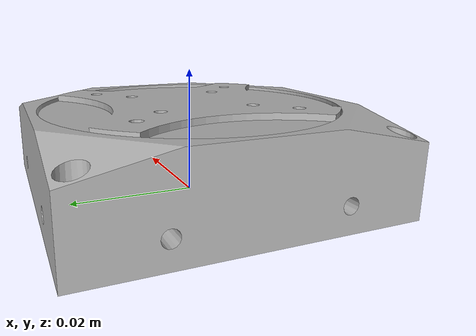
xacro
<?xml version="1.0"?>
<robot xmlns:xacro="http://www.ros.org/wiki/xacro" name="iiwa">

    <xacro:arg name="hardware_interface" default="PositionJointInterface"/>
    <xacro:property name="type" value="rot"/>
    <xacro:arg name="prefix" default="x"/>

    <link name="base_link"/>

    <xacro:include filename="$(find micro_resector_description)/urdf/materials.xacro" />
    <xacro:include filename="$(find micro_resector_description)/urdf/stage/linear_stage.xacro"/>
    <xacro:include filename="$(find micro_resector_description)/urdf/stage/rotation_stage.xacro"/>

    <joint name="$(arg prefix)_${type}_stage_world_joint" type="fixed">
        <parent link="base_link"/>
        <child link="$(arg prefix)_${type}_base_link"/>
        <origin xyz="0.0 0.0 0.00" rpy="${pi/2} 0.0 0.0"/>
    </joint>

    <xacro:if value="${type == 'lin'}">
        <xacro:linear_stage hardware_interface="$(arg hardware_interface)" prefix="$(arg prefix)">
        </xacro:linear_stage>
    </xacro:if>

    <xacro:if value="${type == 'rot'}">
        <xacro:rotation_stage hardware_interface="$(arg hardware_interface)" prefix="$(arg prefix)">
        </xacro:rotation_stage>
    </xacro:if>

</robot>

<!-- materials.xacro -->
<robot name="stage" xmlns:xacro="http://www.ros.org/wiki/xacro" >

<material name="silver">
  <color rgba="0.700 0.700 0.700 1.000"/>
</material>

</robot>

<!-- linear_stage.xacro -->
<robot name="linear_stage" xmlns:xacro="http://www.ros.org/wiki/xacro">

<xacro:include filename="$(find micro_resector_description)/urdf/stage/stage.trans" />
<xacro:include filename="$(find micro_resector_description)/urdf/stage/stage.gazebo" />

<xacro:macro name="linear_stage" params="prefix hardware_interface">
  <link name="${prefix}_lin_base_link">
    <inertial>
      <origin rpy="0 0 0" xyz="0.0 0.0015 0.0"/>
      <mass value="0.058579061972031825"/>
      <inertia ixx="1.2e-05" ixy="-0.0" ixz="-0.0" iyy="2.4e-05" iyz="0.0" izz="1.2e-05"/>
    </inertial>
    <visual>
      <origin rpy="0 0 0" xyz="0 0.0095 0"/>
      <geometry>
        <mesh filename="package://micro_resector_description/meshes/stage/lin_base_link.stl" scale="0.001 0.001 0.001"/>
      </geometry>
      <material name="silver"/>
    </visual>
    <collision>
      <origin rpy="0 0 0" xyz="0 0.0095 0"/>
      <geometry>
        <mesh filename="package://micro_resector_description/meshes/stage/lin_base_link.stl" scale="0.001 0.001 0.001"/>
      </geometry>
    </collision>
  </link>

  <link name="${prefix}_lin_stage_link">
    <inertial>
      <origin rpy="0 0 0" xyz="0.0 -0.00028 0.0"/>
      <mass value="0.11339718225370693"/>
      <inertia ixx="2.3e-05" ixy="0.0" ixz="0.0" iyy="4.6e-05" iyz="0.0" izz="2.3e-05"/>
    </inertial>
    <visual>
      <origin rpy="0 0 0" xyz="0.0 0.0 -0.0"/>
      <geometry>
        <mesh filename="package://micro_resector_description/meshes/stage/lin_stage_link.stl" scale="0.001 0.001 0.001"/>
      </geometry>
      <material name="silver"/>
    </visual>
    <collision>
      <origin rpy="0 0 0" xyz="0.0 0.0 -0.0"/>
      <geometry>
        <mesh filename="package://micro_resector_description/meshes/stage/lin_stage_link.stl" scale="0.001 0.001 0.001"/>
      </geometry>
    </collision>
  </link>

  <joint name="${prefix}_lin_joint" type="prismatic">
    <origin rpy="0 0 0" xyz="0.0 0.0095 0.0"/>
    <parent link="${prefix}_lin_base_link"/>
    <child link="${prefix}_lin_stage_link"/>
    <axis xyz="1 0.0 0.0"/>
    <limit effort="100" lower="-0.015" upper="0.015" velocity="0.0045"/>
  </joint>

  <xacro:stage_gazebo prefix="$(arg prefix)" type="lin"/>
  <xacro:stage_transmission prefix="$(arg prefix)" hardware_interface="${hardware_interface}" type="lin"/>

</xacro:macro>

</robot>

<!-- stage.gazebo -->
<robot xmlns:xacro="http://www.ros.org/wiki/xacro" >

<xacro:property name="body_color" value="Gazebo/Silver" />

<xacro:macro name="stage_gazebo" params="prefix type">
  <gazebo>
    <plugin filename="libgazebo_ros_control.so" name="control"/>
  </gazebo>
  <gazebo reference="$(arg prefix)_${type}_base_link">
    <material>${body_color}</material>
    <mu1>0.2</mu1>
    <mu2>0.2</mu2>
    <selfCollide>true</selfCollide>
    <gravity>true</gravity>
  </gazebo>

  <gazebo reference="$(arg prefix)_${type}_stage_link">
    <material>${body_color}</material>
    <mu1>0.2</mu1>
    <mu2>0.2</mu2>
    <selfCollide>true</selfCollide>
  </gazebo>
</xacro:macro>
</robot>

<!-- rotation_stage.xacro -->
<robot name="rotation_stage" xmlns:xacro="http://www.ros.org/wiki/xacro">

<xacro:include filename="$(find micro_resector_description)/urdf/stage/stage.trans" />
<xacro:include filename="$(find micro_resector_description)/urdf/stage/stage.gazebo" />

<xacro:macro name="rotation_stage" params="prefix hardware_interface">
  <link name="${prefix}_rot_base_link">
    <inertial>
      <origin rpy="0 0 0" xyz="0.0 0.0075 0.0"/>
      <mass value="0.058579061972031825"/>
      <inertia ixx="1.2e-05" ixy="-0.0" ixz="-0.0" iyy="2.4e-05" iyz="0.0" izz="1.2e-05"/>
    </inertial>
    <visual>
      <origin rpy="0 0 0" xyz="0 0.01 0"/>
      <geometry>
        <mesh filename="package://micro_resector_description/meshes/stage/rot_base_link.stl" scale="0.001 0.001 0.001"/>
      </geometry>
      <material name="silver"/>
    </visual>
    <collision>
      <origin rpy="0 0 0" xyz="0 0.01 0"/>
      <geometry>
        <mesh filename="package://micro_resector_description/meshes/stage/rot_base_link.stl" scale="0.001 0.001 0.001"/>
      </geometry>
    </collision>
  </link>

  <link name="${prefix}_rot_stage_link">
    <inertial>
      <origin rpy="0 0 0" xyz="0.0 -0.00028 0.0"/>
      <mass value="0.11339718225370693"/>
      <inertia ixx="2.3e-05" ixy="0.0" ixz="0.0" iyy="4.6e-05" iyz="0.0" izz="2.3e-05"/>
    </inertial>
    <visual>
      <origin rpy="0 0 0" xyz="0.0 -0.005 -0.0"/>
      <geometry>
        <mesh filename="package://micro_resector_description/meshes/stage/rot_stage_link.stl" scale="0.001 0.001 0.001"/>
      </geometry>
      <material name="silver"/>
    </visual>
    <collision>
      <origin rpy="0 0 0" xyz="0.0 -0.005 -0.0"/>
      <geometry>
        <mesh filename="package://micro_resector_description/meshes/stage/rot_stage_link.stl" scale="0.001 0.001 0.001"/>
      </geometry>
    </collision>
  </link>

  <joint name="${prefix}_rot_joint" type="continuous">
    <origin rpy="0 0 0" xyz="0.0 0.015 0.0"/>
    <parent link="${prefix}_rot_base_link"/>
    <child link="${prefix}_rot_stage_link"/>
    <axis xyz="0 1 0.0"/>
    <limit effort="100" velocity="${(pi/180) * 15}"/>
  </joint>

  <xacro:stage_gazebo prefix="$(arg prefix)" type="rot"/>
  <xacro:stage_transmission prefix="$(arg prefix)" hardware_interface="${hardware_interface}" type="rot"/>

</xacro:macro>

</robot>
